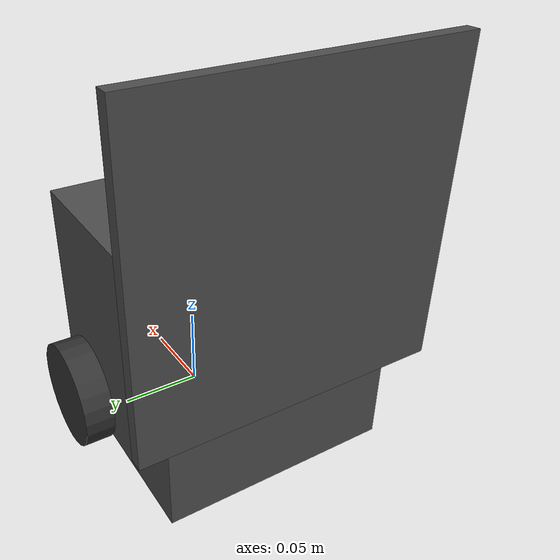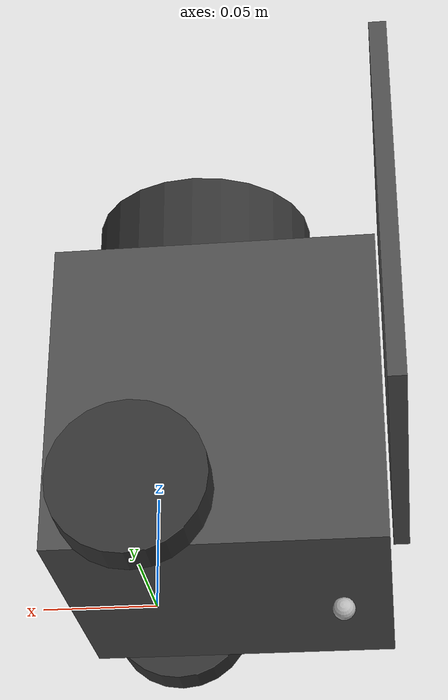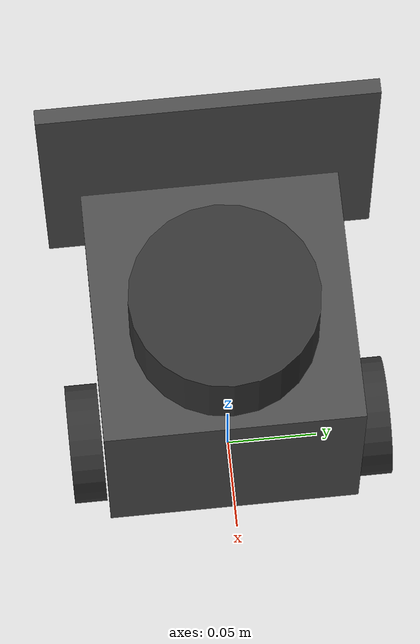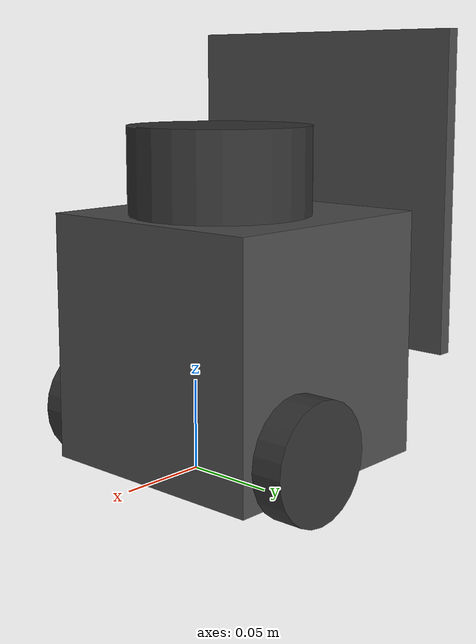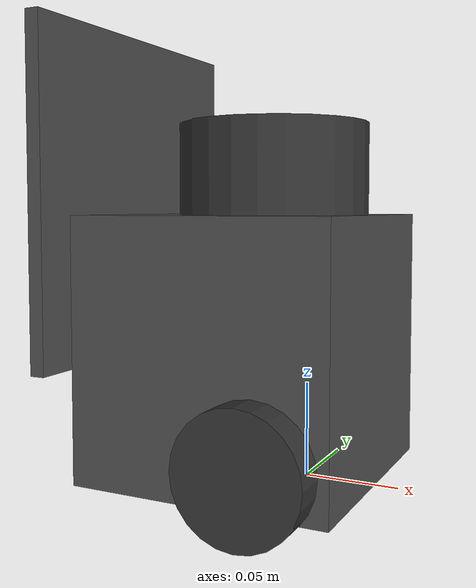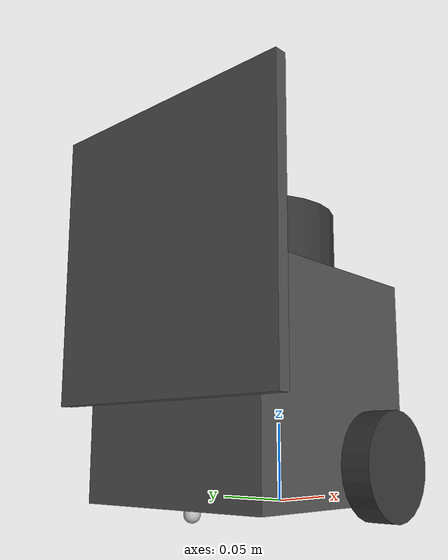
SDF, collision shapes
<?xml version="1.0"?>
<sdf version="1.8">
  <model name="turtlebot3_target">
    <pose>0.0 0.0 0.0 0.0 0.0 0.0</pose>

    <link name="base_footprint"/>

    <link name="base_link">

      <inertial>
        <pose>-0.064 0 0.070 0 0 0</pose>
        <inertia>
          <ixx>1.9527e-02</ixx>
          <ixy>0</ixy>
          <ixz>0</ixz>
          <iyy>1.9527e-02</iyy>
          <iyz>0</iyz>
          <izz>1.9527e-02</izz>
        </inertia>
        <mass>8.2573504e-01</mass>
      </inertial>

      <collision name="base_collision">
        <pose>-0.032 0 0.070 0 0 0</pose>
        <geometry>
          <box>
            <size>0.14 0.14 0.14</size>
          </box>
        </geometry>
      </collision>

      <visual name="base_visual">
        <pose>-0.032 0 0 0 0 0</pose>
        <geometry>
          <mesh>
            <uri>model://turtlebot3_common/meshes/bases/burger_base.stl</uri>
            <scale>0.001 0.001 0.001</scale>
          </mesh>
        </geometry>
        <material>
          <ambient>0.3 0.3 0.3 1.0</ambient>
          <diffuse>0.3 0.3 0.3 1.0</diffuse>
        </material>
      </visual>

      <visual name="aruco_plate">
        <pose>-0.108 0 0.150 0 0 1.5708</pose>
        <cast_shadows>false</cast_shadows>
        <geometry><box><size>0.18 0.008 0.18</size></box></geometry>
        <material>
          <diffuse>1 1 1 1</diffuse>
          <ambient>1 1 1 1</ambient>
          <pbr><metal>
            <albedo_map>materials/textures/target_marker.png</albedo_map>
            <roughness>1.0</roughness>
            <metalness>0.0</metalness>
          </metal></pbr>
        </material>
      </visual>

      <!-- The panel protrudes past the chassis, so it needs a collision of
           its own: without it the follower's LiDAR would not see it and the
           two robots could overlap. -->
      <collision name="aruco_plate_collision">
        <pose>-0.108 0 0.150 0 0 1.5708</pose>
        <geometry><box><size>0.18 0.008 0.18</size></box></geometry>
      </collision>
    </link>

    <link name="imu_link">
    </link>

    <link name="base_scan">
      <inertial>
        <pose>-0.020 0 0.161 0 0 0</pose>
        <inertia>
          <ixx>0.0001</ixx>
          <ixy>0.000</ixy>
          <ixz>0.000</ixz>
          <iyy>0.0001</iyy>
          <iyz>0.000</iyz>
          <izz>0.0001</izz>
        </inertia>
        <mass>0.114</mass>
      </inertial>

      <collision name="lidar_sensor_collision">
        <pose>-0.020 0 0.161 0 0 0</pose>
        <geometry>
          <cylinder>
            <radius>0.0508</radius>
            <length>0.055</length>
          </cylinder>
        </geometry>
      </collision>

      <visual name="lidar_sensor_visual">
        <pose>-0.032 0 0.171 0 0 0</pose>
        <geometry>
          <mesh>
            <uri>model://turtlebot3_common/meshes/sensors/lds.stl</uri>
            <scale>0.001 0.001 0.001</scale>
          </mesh>
        </geometry>
        <material>
          <ambient>0.2 0.2 0.2 1.0</ambient>
          <diffuse>0.2 0.2 0.2 1.0</diffuse>
        </material>
      </visual>

      <sensor name="hls_lfcd_lds" type="gpu_lidar">
        <always_on>true</always_on>
        <visualize>false</visualize>
        <pose>-0.032 0 0.171 0 0 0</pose>
        <update_rate>5</update_rate>
        <topic>/target/scan</topic>
        <gz_frame_id>target/base_scan</gz_frame_id>
        <lidar>
          <scan>
            <horizontal>
              <samples>360</samples>
              <resolution>1.000000</resolution>
              <min_angle>0.000000</min_angle>
              <max_angle>6.280000</max_angle>
            </horizontal>
          </scan>
          <range>
            <min>0.120000</min>
            <max>3.5</max>
            <resolution>0.015000</resolution>
          </range>
          <noise>
            <type>gaussian</type>
            <mean>0.0</mean>
            <stddev>0.01</stddev>
          </noise>
        </lidar>
      </sensor>

    </link>

    <link name="wheel_left_link">

      <inertial>
        <pose>0 0.08 0.023 -1.57 0 0</pose>
        <inertia>
          <ixx>5.445e-05</ixx>
          <ixy>0</ixy>
          <ixz>0</ixz>
          <iyy>5.445e-05</iyy>
          <iyz>0</iyz>
          <izz>1.089e-04</izz>
        </inertia>
        <mass>0.1</mass>
      </inertial>

      <collision name="wheel_left_collision">
        <pose>0 0.08 0.023 -1.57 0 0</pose>
        <geometry>
          <cylinder>
            <radius>0.033</radius>
            <length>0.018</length>
          </cylinder>
        </geometry>
        <surface>
          <!-- This friction pamareter don't contain reliable data!! -->
          <friction>
            <ode>
              <mu>100000.0</mu>
              <mu2>100000.0</mu2>
              <fdir1>0 0 0</fdir1>
              <slip1>0.0</slip1>
              <slip2>0.0</slip2>
            </ode>
          </friction>
          <contact>
            <ode>
              <soft_cfm>0</soft_cfm>
              <soft_erp>0.2</soft_erp>
              <kp>1e+5</kp>
              <kd>1</kd>
              <max_vel>0.01</max_vel>
              <min_depth>0.001</min_depth>
            </ode>
          </contact>
        </surface>
      </collision>

      <visual name="wheel_left_visual">
        <pose>0 0.08 0.023 0 0 0</pose>
        <geometry>
          <mesh>
            <uri>model://turtlebot3_common/meshes/wheels/left_tire.stl</uri>
            <scale>0.001 0.001 0.001</scale>
          </mesh>
        </geometry>
        <material>
          <ambient>0.2 0.2 0.2 1.0</ambient>
          <diffuse>0.2 0.2 0.2 1.0</diffuse>
        </material>
      </visual>
    </link>

    <link name="wheel_right_link">

      <inertial>
        <pose>0.0 -0.08 0.023 -1.57 0 0</pose>
        <inertia>
          <ixx>5.445e-05</ixx>
          <ixy>0</ixy>
          <ixz>0</ixz>
          <iyy>5.445e-05</iyy>
          <iyz>0</iyz>
          <izz>1.089e-04</izz>
        </inertia>
        <mass>0.1</mass>
      </inertial>

      <collision name="wheel_right_collision">
        <pose>0.0 -0.08 0.023 -1.57 0 0</pose>
        <geometry>
          <cylinder>
            <radius>0.033</radius>
            <length>0.018</length>
          </cylinder>
        </geometry>
        <surface>
          <!-- This friction pamareter don't contain reliable data!! -->
          <friction>
            <ode>
              <mu>100000.0</mu>
              <mu2>100000.0</mu2>
              <fdir1>0 0 0</fdir1>
              <slip1>0.0</slip1>
              <slip2>0.0</slip2>
            </ode>
          </friction>
          <contact>
            <ode>
              <soft_cfm>0</soft_cfm>
              <soft_erp>0.2</soft_erp>
              <kp>1e+5</kp>
              <kd>1</kd>
              <max_vel>0.01</max_vel>
              <min_depth>0.001</min_depth>
            </ode>
          </contact>
        </surface>
      </collision>

      <visual name="wheel_right_visual">
        <pose>0.0 -0.08 0.023 0 0 0</pose>
        <geometry>
          <mesh>
            <uri>model://turtlebot3_common/meshes/wheels/right_tire.stl</uri>
            <scale>0.001 0.001 0.001</scale>
          </mesh>
        </geometry>
        <material>
          <ambient>0.2 0.2 0.2 1.0</ambient>
          <diffuse>0.2 0.2 0.2 1.0</diffuse>
        </material>
      </visual>
    </link>

    <link name='caster_back_link'>
      <pose>-0.081 0 -0.004 -1.57 0 0</pose>
      <inertial>
        <mass>0.005</mass>
        <inertia>
          <ixx>0.00001</ixx>
          <ixy>0.000</ixy>
          <ixz>0.000</ixz>
          <iyy>0.00001</iyy>
          <iyz>0.000</iyz>
          <izz>0.00001</izz>
        </inertia>
      </inertial>
      <collision name='collision'>
        <geometry>
          <sphere>
            <radius>0.005000</radius>
          </sphere>
        </geometry>
        <surface>
          <contact>
            <ode>
              <soft_cfm>0</soft_cfm>
              <soft_erp>0.2</soft_erp>
              <kp>1e+5</kp>
              <kd>1</kd>
              <max_vel>0.01</max_vel>
              <min_depth>0.001</min_depth>
            </ode>
          </contact>
        </surface>
      </collision>
    </link>

    <joint name="base_joint" type="fixed">
      <parent>base_footprint</parent>
      <child>base_link</child>
      <pose>0.0 0.0 0.010 0 0 0</pose>
    </joint>

    <joint name="wheel_left_joint" type="revolute">
      <parent>base_link</parent>
      <child>wheel_left_link</child>
      <pose>0.0 0.08 0.023 -1.57 0 0</pose>
      <axis>
        <xyz>0 0 1</xyz>
        <limit>
          <effort>20</effort>
        </limit>
      </axis>
    </joint>

    <joint name="wheel_right_joint" type="revolute">
      <parent>base_link</parent>
      <child>wheel_right_link</child>
      <pose>0.0 -0.08 0.023 -1.57 0 0</pose>
      <axis>
        <xyz>0 0 1</xyz>
        <limit>
          <effort>20</effort>
        </limit>
      </axis>
    </joint>

    <joint name='caster_back_joint' type='ball'>
      <parent>base_link</parent>
      <child>caster_back_link</child>
    </joint>

    <joint name="imu_joint" type="fixed">
      <parent>base_link</parent>
      <child>imu_link</child>
      <pose>-0.032 0 0.068 0 0 0</pose>
      <axis>
        <xyz>0 0 1</xyz>
      </axis>
    </joint>

    <joint name="lidar_joint" type="fixed">
      <parent>base_link</parent>
      <child>base_scan</child>
      <pose>-0.032 0 0.171 0 0 0</pose>
      <axis>
        <xyz>0 0 1</xyz>
      </axis>
    </joint>

    <!-- Nothing here: the ArUco panel is a plain visual element inside
             base_link, added above. No separate link is needed, because it is
             rigidly attached to the robot. -->

    <plugin filename="gz-sim-diff-drive-system" name="gz::sim::systems::DiffDrive">

      <!-- wheels -->
      <left_joint>wheel_left_joint</left_joint>
      <right_joint>wheel_right_joint</right_joint>

      <!-- kinematics -->
      <wheel_separation>0.160</wheel_separation>
      <wheel_radius>0.033</wheel_radius>

      <!-- limits -->
      <max_linear_acceleration>1.0</max_linear_acceleration>

      <topic>/target/cmd_vel</topic>

      <odom_topic>/target/odom</odom_topic>
      <frame_id>target/odom</frame_id>
      <child_frame_id>target/base_footprint</child_frame_id>
      <odom_publisher_frequency>30</odom_publisher_frequency>

      <tf_topic>/target/tf</tf_topic>

    </plugin>

    <plugin filename="gz-sim-pose-publisher-system"
            name="gz::sim::systems::PosePublisher">
      <publish_link_pose>false</publish_link_pose>
      <publish_collision_pose>false</publish_collision_pose>
      <publish_visual_pose>false</publish_visual_pose>
      <publish_sensor_pose>false</publish_sensor_pose>
      <publish_model_pose>true</publish_model_pose>
      <use_pose_vector_msg>false</use_pose_vector_msg>
      <update_frequency>30</update_frequency>
    </plugin>

    <plugin filename="gz-sim-joint-state-publisher-system" name="gz::sim::systems::JointStatePublisher">
      <topic>/target/joint_states</topic>
      <joint_name>wheel_left_joint</joint_name>
      <joint_name>wheel_right_joint</joint_name>
    </plugin>

  </model>
</sdf>
